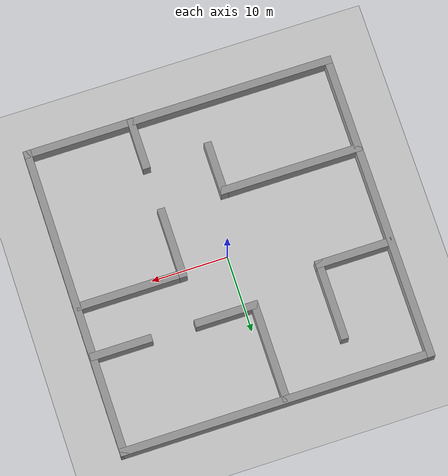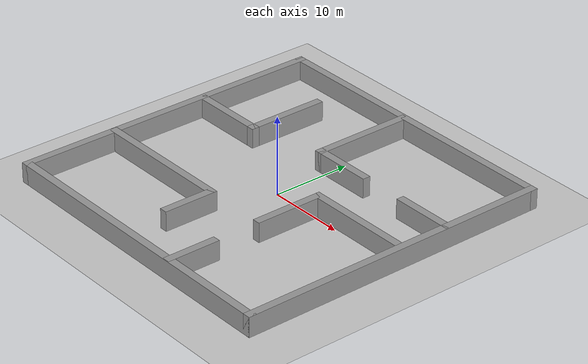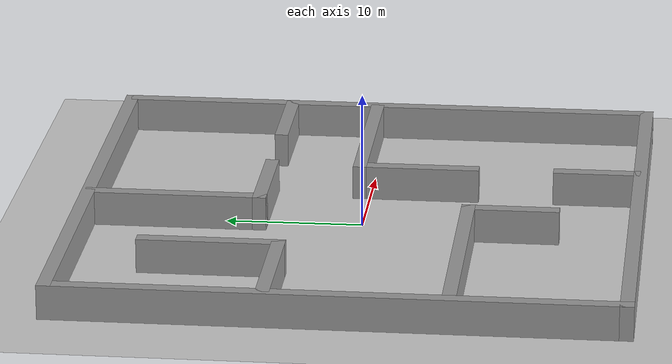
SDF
<sdf version="1.7">
 <world name="default">
  <light name="sun" type="directional">
   <pose>0 0 10 0 -0 0</pose>
   <diffuse>0.8 0.8 0.8 1</diffuse>
   <specular>0.2 0.2 0.2 1</specular>
   <attenuation>
    <range>1000</range>
    <constant>0.9</constant>
    <linear>0.01</linear>
    <quadratic>0.001</quadratic>
   </attenuation>
   <direction>-0.5 0.1 -0.9</direction>
   <spot><inner_angle>0</inner_angle><outer_angle>0</outer_angle><falloff>0</falloff></spot>
  </light>
  <model name="ground_plane">
   <static>1</static>
   <link name="link">
    <collision name="collision">
     <geometry><plane><normal>0 0 1</normal><size>100 100</size></plane></geometry>
     <surface><friction><ode><mu>100</mu><mu2>50</mu2></ode></friction></surface>
    </collision>
    <visual name="visual">
     <cast_shadows>0</cast_shadows>
     <geometry><plane><normal>0 0 1</normal><size>100 100</size></plane></geometry>
     <material>
      <script><uri>file://media/materials/scripts/gazebo.material</uri><name>Gazebo/Grey</name></script>
     </material>
    </visual>
   </link>
  </model>
  <gravity>0 0 -9.8</gravity>
  <magnetic_field>6e-06 2.3e-05 -4.2e-05</magnetic_field>
  <atmosphere type="adiabatic"/>
  <physics type="ode">
   <max_step_size>0.001</max_step_size>
   <real_time_factor>1</real_time_factor>
   <real_time_update_rate>1000</real_time_update_rate>
  </physics>
  <scene><ambient>0.4 0.4 0.4 1</ambient><background>0.7 0.7 0.7 1</background><shadows>1</shadows></scene>
  <spherical_coordinates>
   <surface_model>EARTH_WGS84</surface_model>
   <latitude_deg>0</latitude_deg>
   <longitude_deg>0</longitude_deg>
   <elevation>0</elevation>
   <heading_deg>0</heading_deg>
  </spherical_coordinates>
  <model name="demo06">
   <link name="Wall_0">
    <collision name="Wall_0_Collision">
     <geometry><box><size>41 1 2.5</size></box></geometry>
     <pose>0 0 1.25 0 -0 0</pose>
    </collision>
    <visual name="Wall_0_Visual">
     <pose>0 0 1.25 0 -0 0</pose>
     <geometry><box><size>41 1 2.5</size></box></geometry>
     <material>
      <script><uri>file://media/materials/scripts/gazebo.material</uri><name>Gazebo/Grey</name></script>
      <ambient>1 1 1 1</ambient>
     </material>
     <meta><layer>0</layer></meta>
    </visual>
    <pose>-20 0 0 0 -0 1.5708</pose>
   </link>
   <link name="Wall_13">
    <collision name="Wall_13_Collision">
     <geometry><box><size>10.6001 1 2.5</size></box></geometry>
     <pose>0 0 1.25 0 -0 0</pose>
    </collision>
    <visual name="Wall_13_Visual">
     <pose>0 0 1.25 0 -0 0</pose>
     <geometry><box><size>10.6001 1 2.5</size></box></geometry>
     <material>
      <script><uri>file://media/materials/scripts/gazebo.material</uri><name>Gazebo/Grey</name></script>
      <ambient>1 1 1 1</ambient>
     </material>
     <meta><layer>0</layer></meta>
    </visual>
    <pose>-10.497 9.731 0 0 -0 1.5708</pose>
   </link>
   <link name="Wall_16">
    <collision name="Wall_16_Collision">
     <geometry><box><size>7.09997 1 2.5</size></box></geometry>
     <pose>0 0 1.25 0 -0 0</pose>
    </collision>
    <visual name="Wall_16_Visual">
     <pose>0 0 1.25 0 -0 0</pose>
     <geometry><box><size>7.09997 1 2.5</size></box></geometry>
     <material>
      <script><uri>file://media/materials/scripts/gazebo.material</uri><name>Gazebo/Grey</name></script>
      <ambient>1 1 1 1</ambient>
     </material>
     <meta><layer>0</layer></meta>
    </visual>
    <pose>-2.073 -10.913 0 0 -0 -1.5708</pose>
   </link>
   <link name="Wall_18">
    <collision name="Wall_18_Collision">
     <geometry><box><size>14.35 1 2.5</size></box></geometry>
     <pose>0 0 1.25 0 -0 0</pose>
    </collision>
    <visual name="Wall_18_Visual">
     <pose>0 0 1.25 0 -0 0</pose>
     <geometry><box><size>14.35 1 2.5</size></box></geometry>
     <material>
      <script><uri>file://media/materials/scripts/gazebo.material</uri><name>Gazebo/Grey</name></script>
      <ambient>1 1 1 1</ambient>
     </material>
     <meta><layer>0</layer></meta>
    </visual>
    <pose>12.855 0.787 0 0 -0 3.14159</pose>
   </link>
   <link name="Wall_19">
    <collision name="Wall_19_Collision">
     <geometry><box><size>9.35015 1 2.5</size></box></geometry>
     <pose>0 0 1.25 0 -0 0</pose>
    </collision>
    <visual name="Wall_19_Visual">
     <pose>0 0 1.25 0 -0 0</pose>
     <geometry><box><size>9.35015 1 2.5</size></box></geometry>
     <material>
      <script><uri>file://media/materials/scripts/gazebo.material</uri><name>Gazebo/Grey</name></script>
      <ambient>1 1 1 1</ambient>
     </material>
     <meta><layer>0</layer></meta>
    </visual>
    <pose>6.18 -3.388 0 0 -0 -1.5708</pose>
   </link>
   <link name="Wall_2">
    <collision name="Wall_2_Collision">
     <geometry><box><size>41 1 2.5</size></box></geometry>
     <pose>0 0 1.25 0 -0 0</pose>
    </collision>
    <visual name="Wall_2_Visual">
     <pose>0 0 1.25 0 -0 0</pose>
     <geometry><box><size>41 1 2.5</size></box></geometry>
     <material>
      <script><uri>file://media/materials/scripts/gazebo.material</uri><name>Gazebo/Grey</name></script>
      <ambient>1 1 1 1</ambient>
     </material>
     <meta><layer>0</layer></meta>
    </visual>
    <pose>0 -20 0 0 -0 0</pose>
   </link>
   <link name="Wall_21">
    <collision name="Wall_21_Collision">
     <geometry><box><size>6.8502 1 2.5</size></box></geometry>
     <pose>0 0 1.25 0 -0 0</pose>
    </collision>
    <visual name="Wall_21_Visual">
     <pose>0 0 1.25 0 -0 0</pose>
     <geometry><box><size>6.8502 1 2.5</size></box></geometry>
     <material>
      <script><uri>file://media/materials/scripts/gazebo.material</uri><name>Gazebo/Grey</name></script>
      <ambient>1 1 1 1</ambient>
     </material>
     <meta><layer>0</layer></meta>
    </visual>
    <pose>6.262 -16.993 0 0 -0 -1.5708</pose>
   </link>
   <link name="Wall_23">
    <collision name="Wall_23_Collision">
     <geometry><box><size>18.85 1 2.5</size></box></geometry>
     <pose>0 0 1.25 0 -0 0</pose>
    </collision>
    <visual name="Wall_23_Visual">
     <pose>0 0 1.25 0 -0 0</pose>
     <geometry><box><size>18.85 1 2.5</size></box></geometry>
     <material>
      <script><uri>file://media/materials/scripts/gazebo.material</uri><name>Gazebo/Grey</name></script>
      <ambient>1 1 1 1</ambient>
     </material>
     <meta><layer>0</layer></meta>
    </visual>
    <pose>-10.998 -7.863 0 0 -0 3.14159</pose>
   </link>
   <link name="Wall_25">
    <collision name="Wall_25_Collision">
     <geometry><box><size>13.35 1 2.5</size></box></geometry>
     <pose>0 0 1.25 0 -0 0</pose>
    </collision>
    <visual name="Wall_25_Visual">
     <pose>0 0 1.25 0 -0 0</pose>
     <geometry><box><size>13.35 1 2.5</size></box></geometry>
     <material>
      <script><uri>file://media/materials/scripts/gazebo.material</uri><name>Gazebo/Grey</name></script>
      <ambient>1 1 1 1</ambient>
     </material>
     <meta><layer>0</layer></meta>
    </visual>
    <pose>-1.164 13.577 0 0 -0 -1.5708</pose>
   </link>
   <link name="Wall_26">
    <collision name="Wall_26_Collision">
     <geometry><box><size>8.3501 1 2.5</size></box></geometry>
     <pose>0 0 1.25 0 -0 0</pose>
    </collision>
    <visual name="Wall_26_Visual">
     <pose>0 0 1.25 0 -0 0</pose>
     <geometry><box><size>8.3501 1 2.5</size></box></geometry>
     <material>
      <script><uri>file://media/materials/scripts/gazebo.material</uri><name>Gazebo/Grey</name></script>
      <ambient>1 1 1 1</ambient>
     </material>
     <meta><layer>0</layer></meta>
    </visual>
    <pose>2.511 7.402 0 0 -0 0</pose>
   </link>
   <link name="Wall_28">
    <collision name="Wall_28_Collision">
     <geometry><box><size>8.1001 1 2.5</size></box></geometry>
     <pose>0 0 1.25 0 -0 0</pose>
    </collision>
    <visual name="Wall_28_Visual">
     <pose>0 0 1.25 0 -0 0</pose>
     <geometry><box><size>8.1001 1 2.5</size></box></geometry>
     <material>
      <script><uri>file://media/materials/scripts/gazebo.material</uri><name>Gazebo/Grey</name></script>
      <ambient>1 1 1 1</ambient>
     </material>
     <meta><layer>0</layer></meta>
    </visual>
    <pose>16.336 7.402 0 0 -0 0</pose>
   </link>
   <link name="Wall_4">
    <collision name="Wall_4_Collision">
     <geometry><box><size>41 1 2.5</size></box></geometry>
     <pose>0 0 1.25 0 -0 0</pose>
    </collision>
    <visual name="Wall_4_Visual">
     <pose>0 0 1.25 0 -0 0</pose>
     <geometry><box><size>41 1 2.5</size></box></geometry>
     <material>
      <script><uri>file://media/materials/scripts/gazebo.material</uri><name>Gazebo/Grey</name></script>
      <ambient>1 1 1 1</ambient>
     </material>
     <meta><layer>0</layer></meta>
    </visual>
    <pose>20 0 0 0 -0 1.5708</pose>
   </link>
   <link name="Wall_6">
    <collision name="Wall_6_Collision">
     <geometry><box><size>41 1 2.5</size></box></geometry>
     <pose>0 0 1.25 0 -0 0</pose>
    </collision>
    <visual name="Wall_6_Visual">
     <pose>0 0 1.25 0 -0 0</pose>
     <geometry><box><size>41 1 2.5</size></box></geometry>
     <material>
      <script><uri>file://media/materials/scripts/gazebo.material</uri><name>Gazebo/Grey</name></script>
      <ambient>1 1 1 1</ambient>
     </material>
     <meta><layer>0</layer></meta>
    </visual>
    <pose>0 20 0 0 -0 0</pose>
   </link>
   <link name="Wall_8">
    <collision name="Wall_8_Collision">
     <geometry><box><size>10.1003 1 2.5</size></box></geometry>
     <pose>0 0 1.25 0 -0 0</pose>
    </collision>
    <visual name="Wall_8_Visual">
     <pose>0 0 1.25 0 -0 0</pose>
     <geometry><box><size>10.1003 1 2.5</size></box></geometry>
     <material>
      <script><uri>file://media/materials/scripts/gazebo.material</uri><name>Gazebo/Grey</name></script>
      <ambient>1 1 1 1</ambient>
     </material>
     <meta><layer>0</layer></meta>
    </visual>
    <pose>-15.047 4.931 0 0 -0 0</pose>
   </link>
   <static>1</static>
  </model>
 </world>
</sdf>
